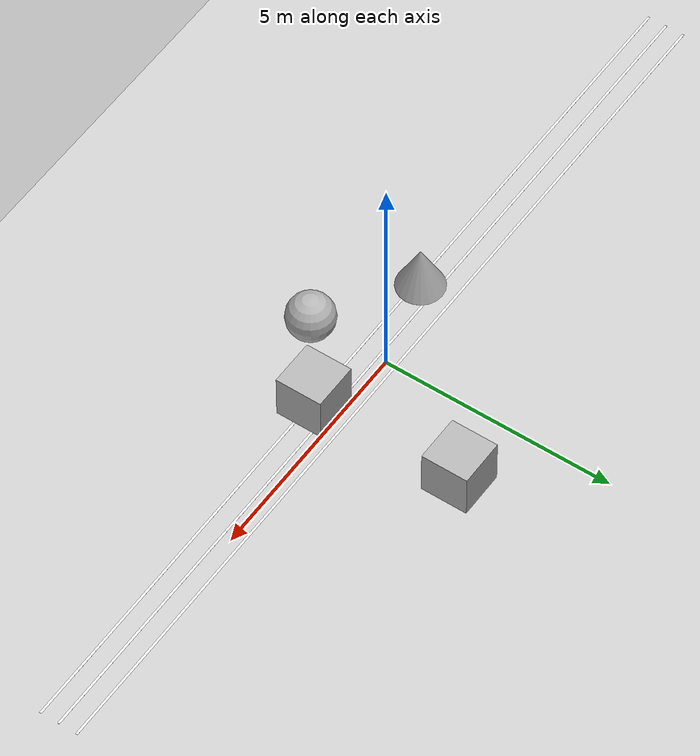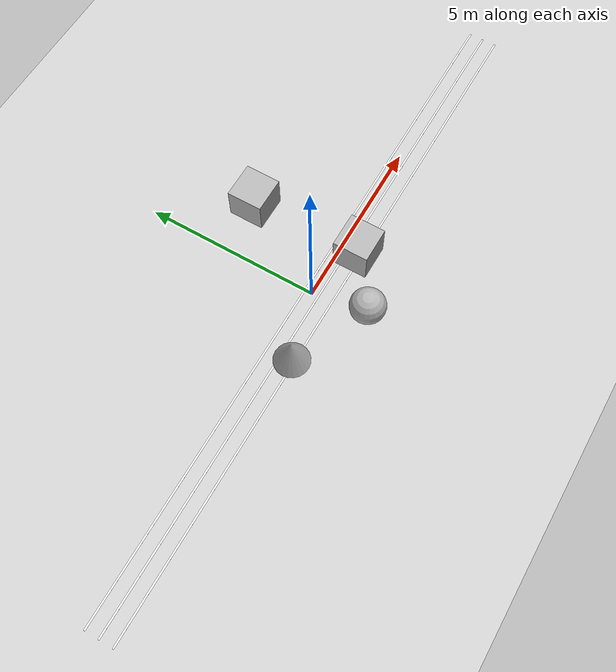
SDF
<sdf version='1.10'>
  <world name='myworld'>
    <physics name='1ms' type='ignored'>
      <max_step_size>0.001</max_step_size>
      <real_time_factor>1</real_time_factor>
      <real_time_update_rate>1000</real_time_update_rate>
    </physics>
    <plugin name='gz::sim::systems::Physics' filename='gz-sim-physics-system'/>
    <plugin name='gz::sim::systems::UserCommands' filename='gz-sim-user-commands-system'/>
    <plugin name='gz::sim::systems::SceneBroadcaster' filename='gz-sim-scene-broadcaster-system'/>
    <plugin name='gz::sim::systems::Sensors' filename='gz-sim-sensors-system'>
      <render_engine>ogre2</render_engine>
    </plugin>
    <plugin name='gz::sim::systems::Contact' filename='gz-sim-contact-system'/>
    <gravity>0 0 -9.8000000000000007</gravity>
    <magnetic_field>5.5644999999999998e-06 2.2875799999999999e-05 -4.2388400000000002e-05</magnetic_field>
    <atmosphere type='adiabatic'/>
    <scene>
      <ambient>0.400000006 0.400000006 0.400000006 1</ambient>
      <background>0.699999988 0.699999988 0.699999988 1</background>
      <shadows>true</shadows>
    </scene>

    <model name="lane_lines">
    <static>true</static>
    <link name="link">

      <!-- LEFT LINE (Y = +0.2m)                     -->
      <visual name="left_line_visual">
        <!-- Pose: X=0 (Center), Y=0.2 (Left), Z=0.001 (Slightly raised) -->
        <pose>0 0.2 0.001 0 0 0</pose>
        <geometry>
          <box>
            <!-- Length=10m, Width=5cm, Height=1mm -->
            <size>20 0.05 0.001</size>
          </box>
        </geometry>
        <material>
          <ambient>1 1 1 1</ambient>
          <diffuse>1 1 1 1</diffuse>
          <specular>0.1 0.1 0.1 1</specular>
        </material>
      </visual>

      <!-- RIGHT LINE (Y = -0.2m)                    -->
      <visual name="right_line_visual">
        <!-- Pose: X=0 (Center), Y=-0.2 (Right), Z=0.001 (Slightly raised) -->
        <pose>0 -0.2 0.001 0 0 0</pose>
        <geometry>
          <box>
            <!-- Length=10m, Width=5cm, Height=1mm -->
            <size>20 0.05 0.001</size>
          </box>
        </geometry>
        <material>
          <ambient>1 1 1 1</ambient>
          <diffuse>1 1 1 1</diffuse>
          <specular>0.1 0.1 0.1 1</specular>
        </material>
      </visual>

       <visual name="very_left_line_visual">
        <!-- Pose: X=0 (Center), Y=0.2 (Left), Z=0.001 (Slightly raised) -->
        <pose>0 -0.6 0.001 0 0 0</pose>
        <geometry>
          <box>
            <!-- Length=10m, Width=5cm, Height=1mm -->
            <size>20 0.05 0.001</size>
          </box>
        </geometry>
        <material>
          <ambient>1 1 1 1</ambient>
          <diffuse>1 1 1 1</diffuse>
          <specular>0.1 0.1 0.1 1</specular>
        </material>
      </visual>

      </link>
    </model>

    <model name='ground_plane'>
      <static>true</static>
      <link name='link'>
        <collision name='collision'>
          <geometry>
            <plane>
              <normal>0 0 1</normal>
              <size>100 100</size>
            </plane>
          </geometry>
          <surface>
            <friction>
              <ode/>
            </friction>
            <bounce/>
            <contact/>
          </surface>
        </collision>
        <visual name='visual'>
          <geometry>
            <plane>
              <normal>0 0 1</normal>
              <size>100 100</size>
            </plane>
          </geometry>
          <material>
            <ambient>0.800000012 0.800000012 0.800000012 1</ambient>
            <diffuse>0.800000012 0.800000012 0.800000012 1</diffuse>
            <specular>0.800000012 0.800000012 0.800000012 1</specular>
          </material>
        </visual>
        <pose>0 0 0 0 0 0</pose>
        <inertial>
          <pose>0 0 0 0 0 0</pose>
          <mass>1</mass>
          <inertia>
            <ixx>1</ixx>
            <ixy>0</ixy>
            <ixz>0</ixz>
            <iyy>1</iyy>
            <iyz>0</iyz>
            <izz>1</izz>
          </inertia>
        </inertial>
        <enable_wind>false</enable_wind>
      </link>
      <pose>0 0 0 0 0 0</pose>
      <self_collide>false</self_collide>
    </model>

    <model name='box'>
      <pose>1.6303042123982365 -0.50544241173120583 0.49999999990199806 6.2287739151293738e-22 9.3279666454713669e-22 -3.6315533669320137e-22</pose>
      <link name='box_link'>
        <inertial>
          <inertia>
            <ixx>0.16666</ixx>
            <ixy>0</ixy>
            <ixz>0</ixz>
            <iyy>0.16666</iyy>
            <iyz>0</iyz>
            <izz>0.16666</izz>
          </inertia>
          <mass>1</mass>
          <pose>0 0 0 0 0 0</pose>
        </inertial>
        <collision name='box_collision'>
          <geometry>
            <box>
              <size>1 1 1</size>
            </box>
          </geometry>
          <surface>
            <friction>
              <ode/>
            </friction>
            <bounce/>
            <contact/>
          </surface>
        </collision>
        <visual name='box_visual'>
          <geometry>
            <box>
              <size>1 1 1</size>
            </box>
          </geometry>
          <material>
            <ambient>0.300000012 0.300000012 0.300000012 1</ambient>
            <diffuse>0.699999988 0.699999988 0.699999988 1</diffuse>
            <specular>1 1 1 1</specular>
          </material>
        </visual>
        <pose>0 0 0 0 0 0</pose>
        <enable_wind>false</enable_wind>
      </link>
      <static>false</static>
      <self_collide>false</self_collide>
    </model>
    <model name='sphere'>
      <pose>0.22294507577256795 -1.5636163764351396 0.499999999902001 0 0 0</pose>
      <link name='sphere_link'>
        <inertial>
          <inertia>
            <ixx>0.10000000000000001</ixx>
            <ixy>0</ixy>
            <ixz>0</ixz>
            <iyy>0.10000000000000001</iyy>
            <iyz>0</iyz>
            <izz>0.10000000000000001</izz>
          </inertia>
          <mass>1</mass>
          <pose>0 0 0 0 0 0</pose>
        </inertial>
        <collision name='sphere_collision'>
          <geometry>
            <sphere>
              <radius>0.5</radius>
            </sphere>
          </geometry>
          <surface>
            <friction>
              <ode/>
            </friction>
            <bounce/>
            <contact/>
          </surface>
        </collision>
        <visual name='sphere_visual'>
          <geometry>
            <sphere>
              <radius>0.5</radius>
            </sphere>
          </geometry>
          <material>
            <ambient>0.300000012 0.300000012 0.300000012 1</ambient>
            <diffuse>0.699999988 0.699999988 0.699999988 1</diffuse>
            <specular>1 1 1 1</specular>
          </material>
        </visual>
        <pose>0 0 0 0 0 0</pose>
        <enable_wind>false</enable_wind>
      </link>
      <static>false</static>
      <self_collide>false</self_collide>
    </model>
    <model name='cone'>
      <pose>-1.8944744052704767 -0.51757588552049116 0.49999999993296756 5.2547036773489905e-17 -7.7132841036162404e-10 -1.8131870103988287e-22</pose>
      <link name='cone_link'>
        <inertial>
          <inertia>
            <ixx>0.074999999999999997</ixx>
            <ixy>0</ixy>
            <ixz>0</ixz>
            <iyy>0.074999999999999997</iyy>
            <iyz>0</iyz>
            <izz>0.074999999999999997</izz>
          </inertia>
          <mass>1</mass>
          <pose>0 0 0 0 0 0</pose>
        </inertial>
        <collision name='cone_collision'>
          <geometry>
            <cone>
              <radius>0.5</radius>
              <length>1</length>
            </cone>
          </geometry>
          <surface>
            <friction>
              <ode/>
            </friction>
            <bounce/>
            <contact/>
          </surface>
        </collision>
        <visual name='cone_visual'>
          <geometry>
            <cone>
              <radius>0.5</radius>
              <length>1</length>
            </cone>
          </geometry>
          <material>
            <ambient>0.300000012 0.300000012 0.300000012 1</ambient>
            <diffuse>0.699999988 0.699999988 0.699999988 1</diffuse>
            <specular>1 1 1 1</specular>
          </material>
        </visual>
        <pose>0 0 0 0 0 0</pose>
        <enable_wind>false</enable_wind>
      </link>
      <static>false</static>
      <self_collide>false</self_collide>
    </model>
    <model name='box_0'>
      <pose>1.5479041201447368 2.6913734030335243 0.49999999990199806 6.2287739151293738e-22 9.3279666454713669e-22 -3.6315533669320137e-22</pose>
      <link name='box_link'>
        <inertial>
          <inertia>
            <ixx>0.16666</ixx>
            <ixy>0</ixy>
            <ixz>0</ixz>
            <iyy>0.16666</iyy>
            <iyz>0</iyz>
            <izz>0.16666</izz>
          </inertia>
          <mass>1</mass>
          <pose>0 0 0 0 0 0</pose>
        </inertial>
        <collision name='box_collision'>
          <geometry>
            <box>
              <size>1 1 1</size>
            </box>
          </geometry>
          <surface>
            <friction>
              <ode/>
            </friction>
            <bounce/>
            <contact/>
          </surface>
        </collision>
        <visual name='box_visual'>
          <geometry>
            <box>
              <size>1 1 1</size>
            </box>
          </geometry>
          <material>
            <ambient>0.300000012 0.300000012 0.300000012 1</ambient>
            <diffuse>0.699999988 0.699999988 0.699999988 1</diffuse>
            <specular>1 1 1 1</specular>
          </material>
        </visual>
        <pose>0 0 0 0 0 0</pose>
        <enable_wind>false</enable_wind>
      </link>
      <static>false</static>
      <self_collide>false</self_collide>
    </model>
    <light name='sun' type='directional'>
      <pose>0 0 10 0 0 0</pose>
      <cast_shadows>true</cast_shadows>
      <intensity>1</intensity>
      <direction>-0.5 0.10000000000000001 -0.90000000000000002</direction>
      <diffuse>0.800000012 0.800000012 0.800000012 1</diffuse>
      <specular>0.200000003 0.200000003 0.200000003 1</specular>
      <attenuation>
        <range>1000</range>
        <linear>0.01</linear>
        <constant>0.90000000000000002</constant>
        <quadratic>0.001</quadratic>
      </attenuation>
      <spot>
        <inner_angle>0</inner_angle>
        <outer_angle>0</outer_angle>
        <falloff>0</falloff>
      </spot>
    </light>
  </world>
</sdf>
